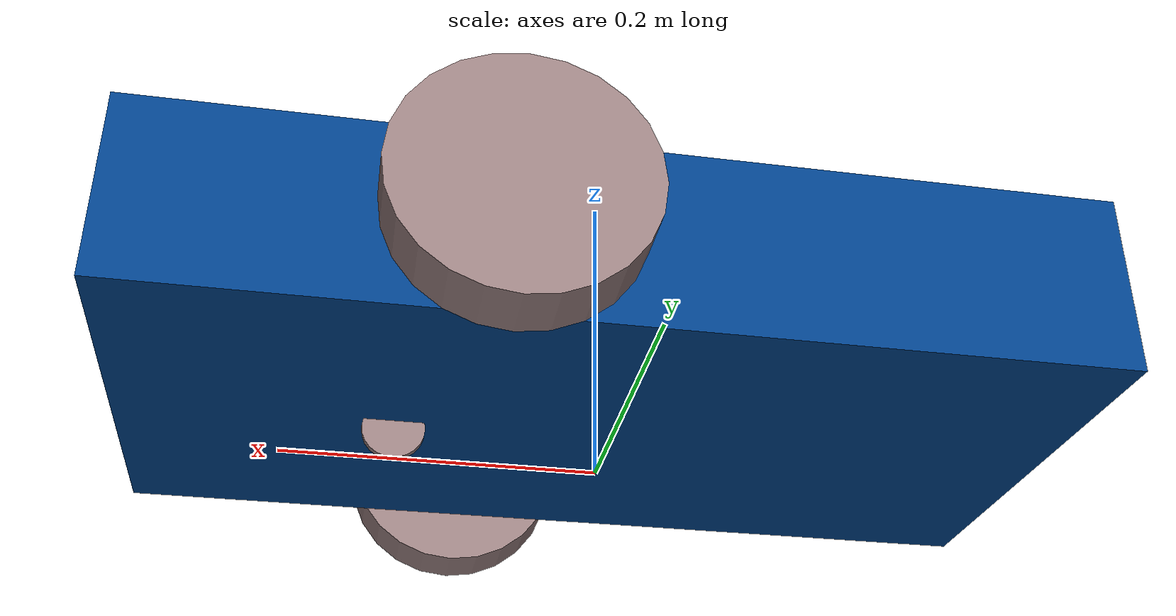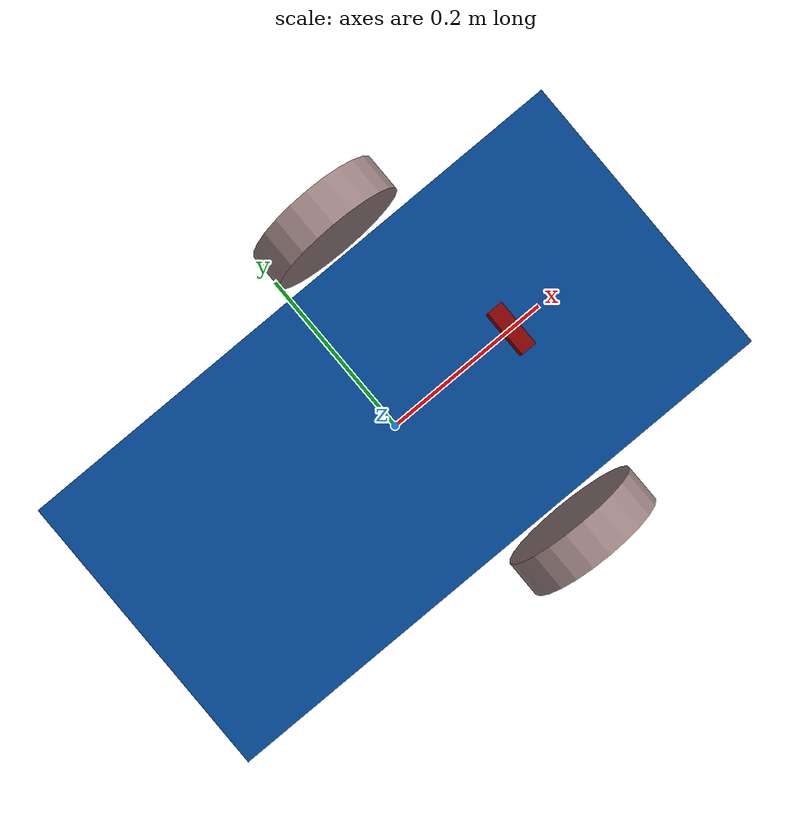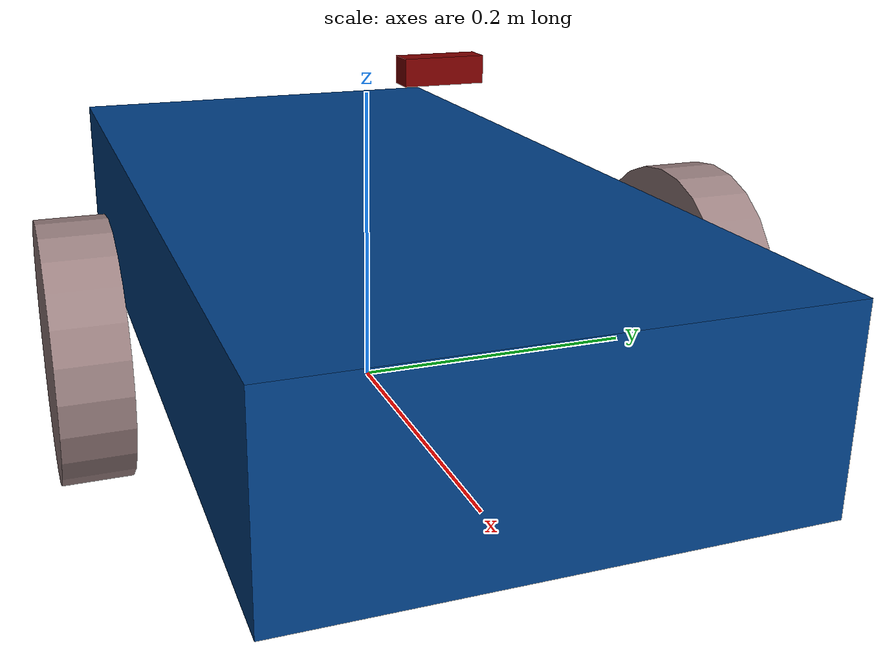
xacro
<?xml version="1.0"?>
<robot xmlns:xacro="http://www.ros.org/wiki/xacro" name="mmm_bot">

  <xacro:property name="body_length" value="0.6096" />>
  <xacro:property name="body_width" value="0.3048" />

  <xacro:property name="wheel_forward_of_center_distance" value=".0762" />>
  <xacro:property name="wheel_radius" value="0.0762" />
  <xacro:property name="wheel_spacer" value="0.00635" />>
  <xacro:property name="wheel_width" value="0.040" />

  <!--xacro:include filename="$(find m1)/robots/m1.gazebo" /-->
  <gazebo>
    <plugin name="gazebo_ros_control" filename="libgazebo_ros_control.so">
      <robotNamespace>mmm_bot</robotNamespace>
      <robotSimType>gazebo_ros_control/DefaultRobotHWSim</robotSimType>
    </plugin>
  </gazebo>

  <!-- Materials -->
  <material name="base">
    <color rgba="0.0 0.25 0.53 1" />>
  </material>

  <material name="wheel">
    <color rgba="0.6 0.5 0.5 1" />
  </material>

  <!-- Parts -->
  <link name="base_link">
    <visual>
      <geometry>
        <box size="${body_length} ${body_width} 0.12"/>
      </geometry>
      <origin rpy="0 0 0" xyz="0 0 0.085"/>
      <material name="base" />
    </visual>
    <inertial>
        <origin xyz="0 0 0" rpy="0 0 0" />
        <mass value="1" />
        <inertia
          ixx="1.0" ixy="0.0" ixz="0.0"
          iyy="1.0" iyz="0.0"
          izz="1.0" />
    </inertial>
  </link>

  <link name="lwheel">
    <visual>
      <geometry>
        <cylinder length="${wheel_width}" radius="${wheel_radius}" />
      </geometry>
      <origin rpy="0 0 0" xyz="0 0 0"/>
      <material name="wheel" />
    </visual>
    <inertial>
        <origin xyz="0 0 0" rpy="0 0 0" />
        <mass value="1" />
        <inertia
          ixx="1.0" ixy="0.0" ixz="0.0"
          iyy="1.0" iyz="0.0"
          izz="1.0" />
    </inertial>
  </link>

  <joint name="base_to_lwheel" type="continuous">
    <parent link="base_link"/>
    <child link="lwheel"/>
    <origin xyz="${wheel_forward_of_center_distance} ${(body_width/2)+wheel_spacer+wheel_width} ${wheel_radius}" rpy="1.5708 0 0"/>
    <axis xyz="0 0 1" />
  </joint>

  <transmission name="left_wheel">
    <type>transmission_interface/SimpleTransmission</type>
    <joint name="base_to_lwheel">
      <hardwareInterface>hardware_interface/VelocityJointInterface</hardwareInterface>
    </joint>
    <actuator name="left_motor">
      <hardwareInterface>hardware_interface/VelocityJointInterface</hardwareInterface>
      <mechanicalReduction>1</mechanicalReduction>
    </actuator>
  </transmission>

  <link name="rwheel">
    <visual>
      <geometry>
        <cylinder length="${wheel_width}" radius="${wheel_radius}" />
      </geometry>
      <origin rpy="0 0 0" xyz="0 0 0"/>
      <material name="wheel" />
    </visual>
    <inertial>
        <origin xyz="0 0 0" rpy="0 0 0" />
        <mass value="1" />
        <inertia
          ixx="1.0" ixy="0.0" ixz="0.0"
          iyy="1.0" iyz="0.0"
          izz="1.0" />
    </inertial>
  </link>

  <joint name="base_to_rwheel" type="continuous">
    <parent link="base_link"/>
    <child link="rwheel"/>
    <origin xyz="${wheel_forward_of_center_distance} -${(body_width/2)+wheel_spacer+wheel_width} ${wheel_radius}" rpy="-1.5708 0 0"/>
    <axis xyz="0 0 1" />
  </joint>

  <transmission name="right_wheel">
    <type>transmission_interface/SimpleTransmission</type>
    <joint name="base_to_rwheel">
      <hardwareInterface>hardware_interface/VelocityJointInterface</hardwareInterface>
    </joint>
    <actuator name="right_motor">
      <hardwareInterface>hardware_interface/VelocityJointInterface</hardwareInterface>
      <mechanicalReduction>1</mechanicalReduction>
    </actuator>
  </transmission>

  <link name="fwheel_attach">
    <visual>
      <geometry>
        <cylinder length="0.060" radius="0.023"/>
      </geometry>
      <origin rpy="0 0 0" xyz="0.13 0 0.08"/>
      <material name="white">
        <color rgba="0.3 0.4 0.5 1"/>
      </material>
    </visual>
    <inertial>
        <origin xyz="0 0 0" rpy="0 0 0" />
        <mass value="1" />
        <inertia
          ixx="1.0" ixy="0.0" ixz="0.0"
          iyy="1.0" iyz="0.0"
          izz="1.0" />
    </inertial>
  </link>

  <joint name="base_to_fattach" type="fixed">
    <parent link="base_link"/>
    <child link="fwheel_attach"/>
    <origin xyz="0 0 0" rpy="0 0 0"/>
  </joint>

  <link name="fwheel">
    <visual>
      <geometry>
        <cylinder length="0.005" radius="0.020"/>
      </geometry>
      <origin rpy="1.578 0 0" xyz="0 0 0"/>
      <material name="wheel" />
    </visual>
    <inertial>
        <origin xyz="0 0 0" rpy="0 0 0" />
        <mass value="1" />
        <inertia
          ixx="1.0" ixy="0.0" ixz="0.0"
          iyy="1.0" iyz="0.0"
          izz="1.0" />
    </inertial>
  </link>

  <joint name="base_to_fwheel" type="continuous">
    <parent link="base_link"/>
    <child link="fwheel"/>
    <origin xyz="0.13 0 0.02" rpy="0 0 0"/>
    <axis xyz="0 0 1" />
  </joint>

  <link name="scanner">
    <visual>
      <geometry>
        <box size="0.015 0.045 0.015"/>
      </geometry>
      <origin rpy="0 0 0" xyz="0.022 0 0.015"/>
      <material name="black">
        <color rgba="0.5 0 0 1"/>
      </material>
    </visual>
    <inertial>
        <origin xyz="0 0 0" rpy="0 0 0" />
        <mass value="1" />
        <inertia
          ixx="1.0" ixy="0.0" ixz="0.0"
          iyy="1.0" iyz="0.0"
          izz="1.0" />
    </inertial>
  </link>

  <joint name="base_to_scanner" type="fixed">
    <parent link="base_link"/>
    <child link="scanner"/>
    <origin xyz="0.105 0 0.22" rpy="0 0 0"/>
  </joint>

</robot>
